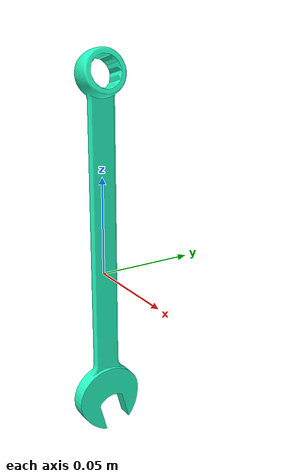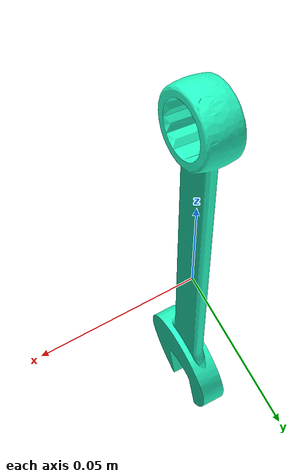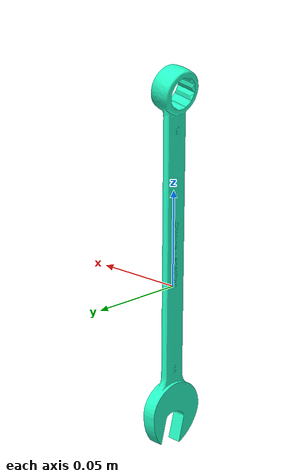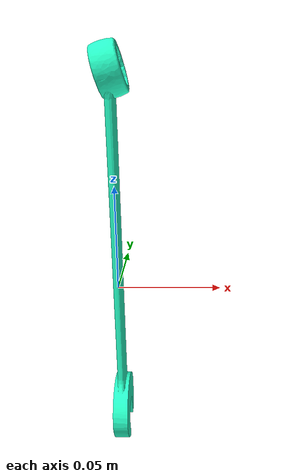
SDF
<?xml version="1.0"?>
<sdf version="1.7">
  <model name="combination_wrench_14mm_bright">
    <pose>0 0 0 0 0 0</pose>
    <static>false</static>
    <link name="link">
      <!-- link frame = tool CoM; Z = long axis (+ toward tool end), X = forward, Y = Z x X -->
      <inertial>
        <pose>0 0 0 0 0 0</pose>
        <mass>0.116949</mass>
        <inertia>
          <ixx>5.034579e-04</ixx>
          <ixy>-1.496616e-20</ixy>
          <ixz>3.227565e-22</ixz>
          <iyy>4.982766e-04</iyy>
          <iyz>-1.488341e-21</iyz>
          <izz>6.175703e-06</izz>
        </inertia>
      </inertial>
      <collision name="collision">
        <geometry>
          <mesh>
            <uri>model://combination_wrench_14mm/meshes/combination_wrench_14mm.dae</uri>
          </mesh>
        </geometry>
      </collision>
      <visual name="visual">
        <geometry>
          <mesh>
            <uri>model://combination_wrench_14mm/meshes/combination_wrench_14mm.dae</uri>
          </mesh>
        </geometry>
        <material>
          <ambient>0.068 0.450 0.352 1.0</ambient>
          <diffuse>0.150 1.000 0.783 1.0</diffuse>
          <specular>0.85 0.85 0.85 1.0</specular>
          <emissive>0 0 0 1.0</emissive>
        </material>
      </visual>
    </link>
  </model>
</sdf>
